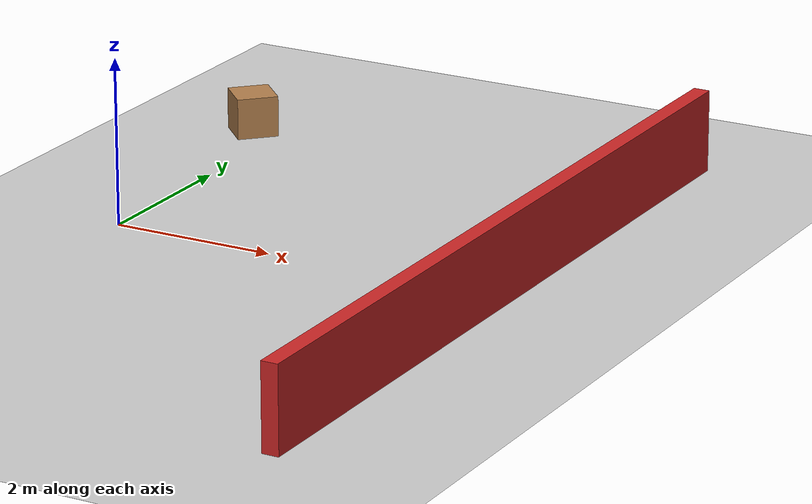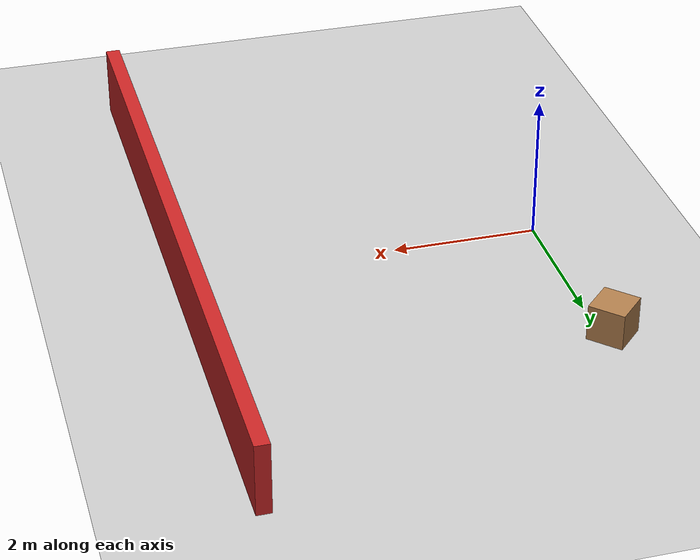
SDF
<?xml version="1.0" ?>
<sdf version="1.7">
  <world name="dynamic_arena">
    <gravity>0 0 -9.8</gravity>
    <magnetic_field>6e-06 2.3e-05 -4.2e-05</magnetic_field>
    <atmosphere type="adiabatic"/>
    <scene>
      <ambient>0.4 0.4 0.4 1</ambient>
      <background>0.7 0.7 0.7 1</background>
      <sky/>
    </scene>
    <light type="directional" name="sun">
      <direction>-0.5 0.1 -0.9</direction>
      <cast_shadows>true</cast_shadows>
      <intensity>0.8</intensity>
    </light>

    <!-- Ground Plane -->
    <model name="ground_plane">
      <static>true</static>
      <link name="link">
        <collision name="collision">
          <geometry>
            <plane>
              <normal>0 0 1</normal>
              <size>100 100</size>
            </plane>
          </geometry>
          <surface>
            <friction>
              <ode>
                <mu>1.0</mu>
                <mu2>1.0</mu2>
              </ode>
            </friction>
          </surface>
        </collision>
        <visual name="visual">
          <geometry>
            <plane>
              <normal>0 0 1</normal>
              <size>100 100</size>
            </plane>
          </geometry>
          <material>
            <script>
              <uri>file://media/materials/scripts/gazebo.material</uri>
              <name>Gazebo/Grey</name>
            </script>
          </material>
        </visual>
      </link>
    </model>

    <!-- Static Obstacles (Walls/Barriers) -->
    <model name="static_wall_1">
      <pose>5 0 0.5 0 0 0</pose>
      <static>true</static>
      <link name="link">
        <visual name="visual">
          <geometry><box><size>0.2 10 1</size></box></geometry>
          <material><script><name>Gazebo/Red</name></script></material>
        </visual>
        <collision name="collision"><geometry><box><size>0.2 10 1</size></box></geometry></collision>
      </link>
    </model>

    <!-- Dynamic Obstacle (A heavy box that the ground robot might interact with) -->
    <model name="heavy_load_box">
      <pose>0 3 0.5 0 0 0.785</pose> <!-- Positioned near a potential task zone -->
      <static>false</static>
      <link name="box_link">
        <inertial>
          <mass>20.0</mass>
          <inertia ixx="1" ixy="0" ixz="0" iyy="1" iyz="0" izz="1"/>
        </inertial>
        <visual name="visual">
          <geometry><box><size>0.5 0.5 0.5</size></box></geometry>
          <material><script><name>Gazebo/Wood</name></script></material>
        </visual>
        <collision name="collision"><geometry><box><size>0.5 0.5 0.5</size></box></geometry></collision>
      </link>
    </model>

  </world>
</sdf>
